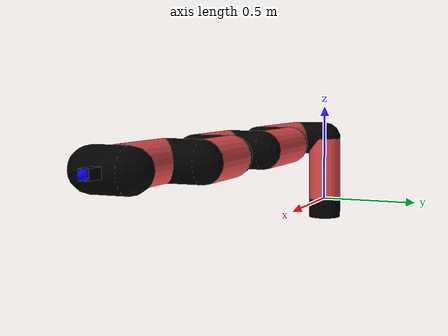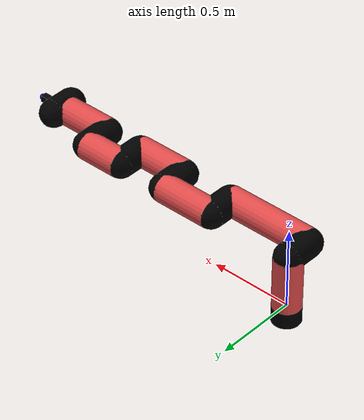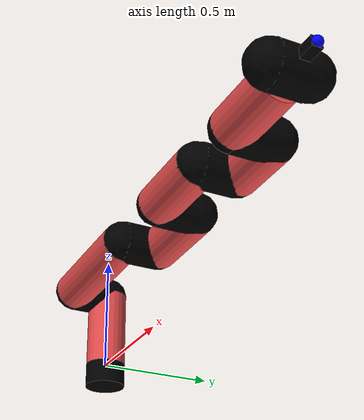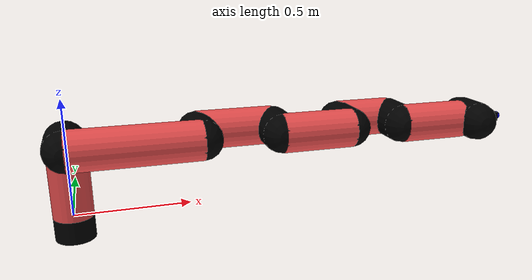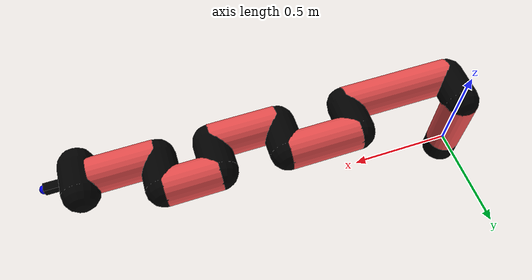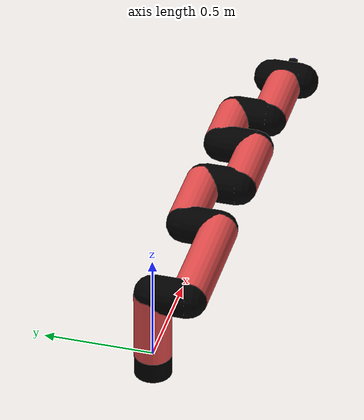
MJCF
<mujoco model="manipulator">
		<compiler angle="degree" coordinate="local" inertiafromgeom="auto" meshdir="meshes/"/>
		<option gravity="0 0 0" integrator="RK4" iterations="30" timestep="0.01"/>

		<default>
		<joint armature="1" limited="true" stiffness="10" damping="15" frictionloss="5.0"/>
		<geom conaffinity="1" condim="3" contype="1" friction=".5 .1 .1" margin="0.002"/>
		<motor ctrllimited="true"/>
		<position ctrllimited="true"/>
		</default>

		<asset>
		<texture builtin="gradient" height="100" rgb1="1.0 1.0 1.0" rgb2="1.0 1.0 1.0" type="skybox" width="100"/>
		<texture builtin="flat" height="32" name="arm_tex" rgb1="0.9 0.3 0.3" type="2d" width="32"/>
		<texture builtin="flat" height="32" name="gripper_tex" rgb1="0.0 0.0 0.0" type="cube" width="32"/>

		<material name="arm_mat" shininess="0.1" specular="0.1" texture="arm_tex"/>
		<material name="gripper_mat" shininess="1" specular="1" texture="gripper_tex"/>
		</asset>

		<worldbody>
		<light cutoff="45" diffuse=".8 .8 .8" dir="0 0.16 -1" directional="false" name="light" pos="0 -2.0 8.0" specular="0.3 0.3 0.3"/>

		<body name="base_link" pos="0 0 -0.1">
		<geom fromto="0 0 0 0 0 0.1" material="arm_mat" name="base_link" rgba="0.0 0.0 0.0 1" size="0.085" type="cylinder"/>
		</body>

		<body name="l1" pos="0 0 0">
<geom fromto="0 0 0 0 0 0.33" material="arm_mat" name="l1" rgba="0.9 0.3 0.3 1" size="0.085" type="cylinder"/>
<geom fromto="0 0 0.33 0 -0.16 0.33" material="arm_mat" name="l1_ex" rgba="0.0 0.0 0.0 1" size="0.085" type="capsule"/>
<joint axis="0 0 1" name="j1" pos="0 0 0" range="-90 90" damping="29.04" frictionloss="8.9"/>

<body name="l2" pos="0 -0.16 0.33">
<geom fromto="0 0 0 0.54 0 0" material="arm_mat" name="l2" rgba="0.9 0.3 0.3 1" size="0.085" type="cylinder"/>
<geom fromto="0.54 0 0 0.54 0.16 0" material="arm_mat" name="l2_ex" rgba="0.0 0.0 0.0 1" size="0.085" type="capsule"/>
<joint axis="0.0 1.0 0.0" name="j2" pos="0 0 0" range="-90 60" damping="28.17" frictionloss="12.27"/>

<body name="l3" pos="0.54 0.16 0">
<geom fromto="0 0 0 0.34 0 0" material="arm_mat" name="l3" rgba="0.9 0.3 0.3 1" size="0.085" type="cylinder"/>
<geom fromto="0.34 0 0 0.34 -0.16 0" material="arm_mat" name="l3_ex" rgba="0.0 0.0 0.0 1" size="0.085" type="capsule"/>
<joint axis="0.0 1.0 0.0" name="j3" pos="0 0 0" range="-30 60" damping="29.1" frictionloss="8.28"/>

<body name="l4" pos="0.34 -0.16 0">
<geom fromto="0 0 0 0.32 0 0" material="arm_mat" name="l4" rgba="0.9 0.3 0.3 1" size="0.085" type="cylinder"/>
<geom fromto="0.32 0 0 0.32 0.16 0" material="arm_mat" name="l4_ex" rgba="0.0 0.0 0.0 1" size="0.085" type="capsule"/>
<joint axis="0.0 1.0 0.0" name="j4" pos="0 0 0" range="-30 60" damping="32.6" frictionloss="9.24"/>

<body name="l5" pos="0.32 0.16 0">
<geom fromto="0 0 0 0.25 0 0" material="arm_mat" name="l5" rgba="0.9 0.3 0.3 1" size="0.085" type="cylinder"/>
<geom fromto="0.25 0 0 0.25 -0.16 0" material="arm_mat" name="l5_ex" rgba="0.0 0.0 0.0 1" size="0.085" type="capsule"/>
<joint axis="0.0 1.0 0.0" name="j5" pos="0 0 0" range="-30 60" damping="31.39" frictionloss="10.9"/>

<body name="l6" pos="0.25 -0.16 0">
<geom fromto="0 0 0 0.3 0 0" material="arm_mat" name="l6" rgba="0.9 0.3 0.3 1" size="0.085" type="cylinder"/>
<joint axis="0.0 1.0 0.0" name="j6" pos="0 0 0" range="-30 60" damping="27.46" frictionloss="11.49"/>

<body name="gripper" pos="0.3 0 0">
<geom fromto="0.05 -0.07 0 0.05 0.07 0" material="gripper_mat" name="gripper" rgba="0.0 0.0 0.0 1" size="0.085" type="capsule"/><joint axis="1 0 0" name="j7" pos="0 0 0" range="-90 90" damping="15" frictionloss="5.0"/><body name="finger" pos="0.1 0 0">
<geom fromto="0 0.0 0 0.1 0.0 0" material="gripper_mat" name="finger" rgba="0.0 0.0 0.0 1" size="0.020 0.06 0.06" type="box"/>
</body>
<site name="current" pos="0.2 0. 0.0" rgba="0. 0. 1.0 1" size="0.02" type="sphere"/>
</body>
</body>
</body>
</body>
</body>
</body>
</body>
</worldbody>
<actuator>
<motor ctrllimited="true" ctrlrange="-1.0 1.0" joint="j1" gear="65.02"/>
<motor ctrllimited="true" ctrlrange="-1.0 1.0" joint="j2" gear="70.97"/>
<motor ctrllimited="true" ctrlrange="-1.0 1.0" joint="j3" gear="75.61"/>
<motor ctrllimited="true" ctrlrange="-1.0 1.0" joint="j4" gear="69.04"/>
<motor ctrllimited="true" ctrlrange="-1.0 1.0" joint="j5" gear="96.04"/>
<motor ctrllimited="true" ctrlrange="-1.0 1.0" joint="j6" gear="85.41"/>
<motor ctrllimited="true" ctrlrange="-1.0 1.0" joint="j7" gear="80"/>
</actuator>
</mujoco>
